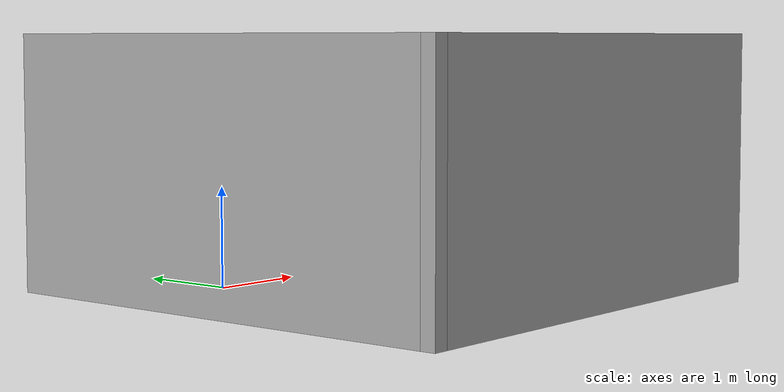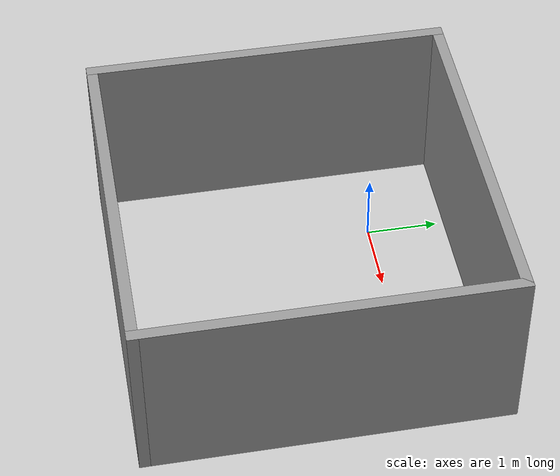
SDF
<?xml version='1.0'?>
<sdf version='1.7'>
  <model name='robotica_industrial'>
    <pose>1.10146 -1.23624 0 0 -0 0</pose>
    <link name='Wall_10'>
      <collision name='Wall_10_Collision'>
        <geometry>
          <box>
            <size>5 0.15 2.5</size>
          </box>
        </geometry>
        <pose>0 0 1.25 0 -0 0</pose>
      </collision>
      <visual name='Wall_10_Visual'>
        <pose>0 0 1.25 0 -0 0</pose>
        <geometry>
          <box>
            <size>5 0.15 2.5</size>
          </box>
        </geometry>
        <material>
          <script>
            <uri>file://media/materials/scripts/gazebo.material</uri>
            <name>Gazebo/Grey</name>
          </script>
          <ambient>1 1 1 1</ambient>
        </material>
        <meta>
          <layer>0</layer>
        </meta>
      </visual>
      <pose>0 -2.425 0 0 -0 3.14159</pose>
    </link>
    <link name='Wall_11'>
      <collision name='Wall_11_Collision'>
        <geometry>
          <box>
            <size>5 0.15 2.5</size>
          </box>
        </geometry>
        <pose>0 0 1.25 0 -0 0</pose>
      </collision>
      <visual name='Wall_11_Visual'>
        <pose>0 0 1.25 0 -0 0</pose>
        <geometry>
          <box>
            <size>5 0.15 2.5</size>
          </box>
        </geometry>
        <material>
          <script>
            <uri>file://media/materials/scripts/gazebo.material</uri>
            <name>Gazebo/Grey</name>
          </script>
          <ambient>1 1 1 1</ambient>
        </material>
        <meta>
          <layer>0</layer>
        </meta>
      </visual>
      <pose>-2.425 0 0 0 -0 1.5708</pose>
    </link>
    <link name='Wall_8'>
      <collision name='Wall_8_Collision'>
        <geometry>
          <box>
            <size>5 0.15 2.5</size>
          </box>
        </geometry>
        <pose>0 0 1.25 0 -0 0</pose>
      </collision>
      <visual name='Wall_8_Visual'>
        <pose>0 0 1.25 0 -0 0</pose>
        <geometry>
          <box>
            <size>5 0.15 2.5</size>
          </box>
        </geometry>
        <material>
          <script>
            <uri>file://media/materials/scripts/gazebo.material</uri>
            <name>Gazebo/Grey</name>
          </script>
          <ambient>1 1 1 1</ambient>
        </material>
        <meta>
          <layer>0</layer>
        </meta>
      </visual>
      <pose>0 2.425 0 0 -0 0</pose>
    </link>
    <link name='Wall_9'>
      <collision name='Wall_9_Collision'>
        <geometry>
          <box>
            <size>5 0.15 2.5</size>
          </box>
        </geometry>
        <pose>0 0 1.25 0 -0 0</pose>
      </collision>
      <visual name='Wall_9_Visual'>
        <pose>0 0 1.25 0 -0 0</pose>
        <geometry>
          <box>
            <size>5 0.15 2.5</size>
          </box>
        </geometry>
        <material>
          <script>
            <uri>file://media/materials/scripts/gazebo.material</uri>
            <name>Gazebo/Grey</name>
          </script>
          <ambient>1 1 1 1</ambient>
        </material>
        <meta>
          <layer>0</layer>
        </meta>
      </visual>
      <pose>2.425 0 0 0 -0 -1.5708</pose>
    </link>
    <static>1</static>
  </model>
</sdf>
